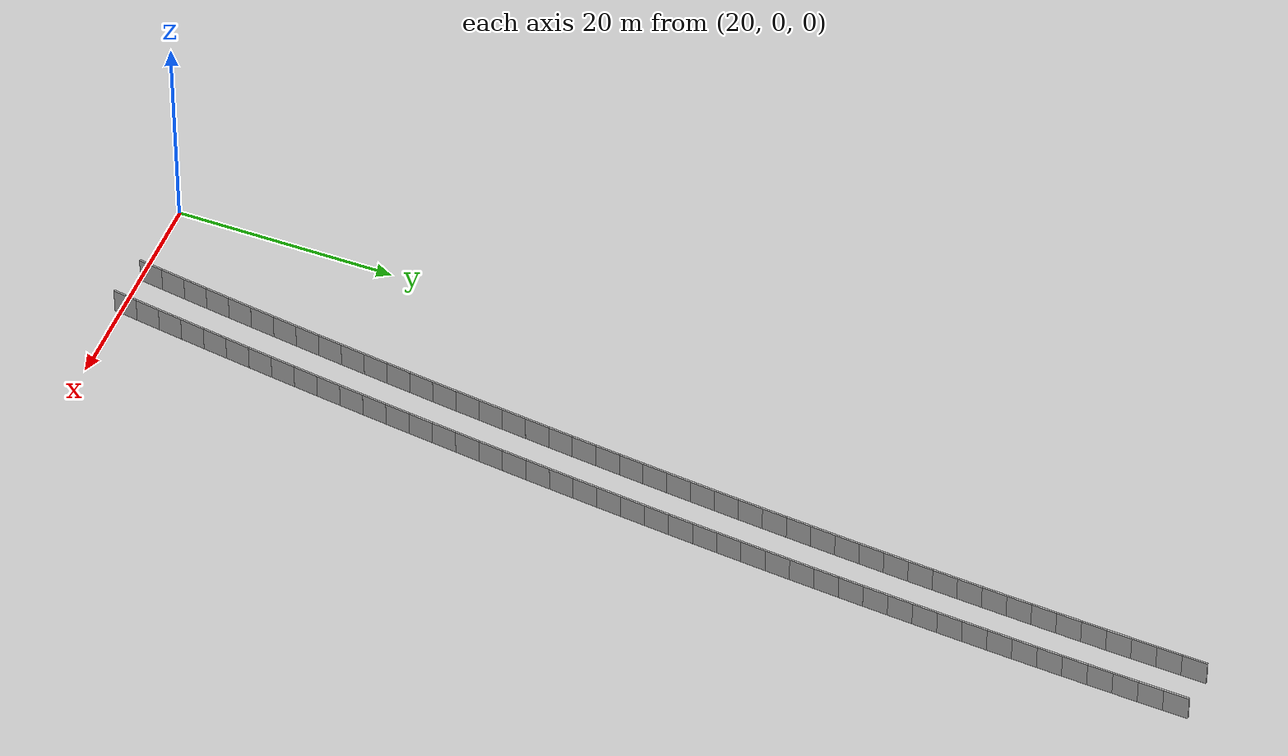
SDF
<?xml version="1.0" ?>
<sdf version="1.6">
  <model name="sps_2311">
    <pose frame="">0 0 0 0 -0 0</pose>
    <static>1</static>
    <self_collide>0</self_collide>
    <allow_auto_disable>0</allow_auto_disable>
    <link name="Wall4527">
      <kinematic>0</kinematic>
      <gravity>1</gravity>
      <self_collide>0</self_collide>
      <collision name="collision">
        <geometry>
          <box>
            <size>2.25472 0.15 2.5</size>
          </box>
        </geometry>
        <pose frame="">0 0 0 0 -0 0</pose>
      </collision>
      <visual name="visual">
        <geometry>
          <box>
            <size>2.25472 0.15 2.5</size>
          </box>
        </geometry>
        <pose frame="">0 0 0 0 -0 0</pose>
        <cast_shadows>1</cast_shadows>
        <transparency>0.0</transparency>
      </visual>
      <pose frame="">32.792 0.606795 1.25 0 -0 1.42792</pose>
    </link>
    <link name="Wall4528">
      <kinematic>0</kinematic>
      <gravity>1</gravity>
      <self_collide>0</self_collide>
      <collision name="collision">
        <geometry>
          <box>
            <size>2.25461 0.15 2.5</size>
          </box>
        </geometry>
        <pose frame="">0 0 0 0 -0 0</pose>
      </collision>
      <visual name="visual">
        <geometry>
          <box>
            <size>2.25461 0.15 2.5</size>
          </box>
        </geometry>
        <pose frame="">0 0 0 0 -0 0</pose>
        <cast_shadows>1</cast_shadows>
        <transparency>0.0</transparency>
      </visual>
      <pose frame="">33.1103 2.83888 1.25 0 -0 1.43038</pose>
    </link>
    <link name="Wall4529">
      <kinematic>0</kinematic>
      <gravity>1</gravity>
      <self_collide>0</self_collide>
      <collision name="collision">
        <geometry>
          <box>
            <size>2.25466 0.15 2.5</size>
          </box>
        </geometry>
        <pose frame="">0 0 0 0 -0 0</pose>
      </collision>
      <visual name="visual">
        <geometry>
          <box>
            <size>2.25466 0.15 2.5</size>
          </box>
        </geometry>
        <pose frame="">0 0 0 0 -0 0</pose>
        <cast_shadows>1</cast_shadows>
        <transparency>0.0</transparency>
      </visual>
      <pose frame="">33.4231 5.0717 1.25 0 -0 1.43276</pose>
    </link>
    <link name="Wall4530">
      <kinematic>0</kinematic>
      <gravity>1</gravity>
      <self_collide>0</self_collide>
      <collision name="collision">
        <geometry>
          <box>
            <size>2.25449 0.15 2.5</size>
          </box>
        </geometry>
        <pose frame="">0 0 0 0 -0 0</pose>
      </collision>
      <visual name="visual">
        <geometry>
          <box>
            <size>2.25449 0.15 2.5</size>
          </box>
        </geometry>
        <pose frame="">0 0 0 0 -0 0</pose>
        <cast_shadows>1</cast_shadows>
        <transparency>0.0</transparency>
      </visual>
      <pose frame="">33.7308 7.30519 1.25 0 -0 1.4351</pose>
    </link>
    <link name="Wall4531">
      <kinematic>0</kinematic>
      <gravity>1</gravity>
      <self_collide>0</self_collide>
      <collision name="collision">
        <geometry>
          <box>
            <size>2.25464 0.15 2.5</size>
          </box>
        </geometry>
        <pose frame="">0 0 0 0 -0 0</pose>
      </collision>
      <visual name="visual">
        <geometry>
          <box>
            <size>2.25464 0.15 2.5</size>
          </box>
        </geometry>
        <pose frame="">0 0 0 0 -0 0</pose>
        <cast_shadows>1</cast_shadows>
        <transparency>0.0</transparency>
      </visual>
      <pose frame="">34.0332 9.53938 1.25 0 -0 1.43743</pose>
    </link>
    <link name="Wall4532">
      <kinematic>0</kinematic>
      <gravity>1</gravity>
      <self_collide>0</self_collide>
      <collision name="collision">
        <geometry>
          <box>
            <size>2.25469 0.15 2.5</size>
          </box>
        </geometry>
        <pose frame="">0 0 0 0 -0 0</pose>
      </collision>
      <visual name="visual">
        <geometry>
          <box>
            <size>2.25469 0.15 2.5</size>
          </box>
        </geometry>
        <pose frame="">0 0 0 0 -0 0</pose>
        <cast_shadows>1</cast_shadows>
        <transparency>0.0</transparency>
      </visual>
      <pose frame="">34.3302 11.7744 1.25 0 -0 1.43994</pose>
    </link>
    <link name="Wall4533">
      <kinematic>0</kinematic>
      <gravity>1</gravity>
      <self_collide>0</self_collide>
      <collision name="collision">
        <geometry>
          <box>
            <size>2.25458 0.15 2.5</size>
          </box>
        </geometry>
        <pose frame="">0 0 0 0 -0 0</pose>
      </collision>
      <visual name="visual">
        <geometry>
          <box>
            <size>2.25458 0.15 2.5</size>
          </box>
        </geometry>
        <pose frame="">0 0 0 0 -0 0</pose>
        <cast_shadows>1</cast_shadows>
        <transparency>0.0</transparency>
      </visual>
      <pose frame="">34.6218 14.0101 1.25 0 -0 1.44218</pose>
    </link>
    <link name="Wall4534">
      <kinematic>0</kinematic>
      <gravity>1</gravity>
      <self_collide>0</self_collide>
      <collision name="collision">
        <geometry>
          <box>
            <size>2.25475 0.15 2.5</size>
          </box>
        </geometry>
        <pose frame="">0 0 0 0 -0 0</pose>
      </collision>
      <visual name="visual">
        <geometry>
          <box>
            <size>2.25475 0.15 2.5</size>
          </box>
        </geometry>
        <pose frame="">0 0 0 0 -0 0</pose>
        <cast_shadows>1</cast_shadows>
        <transparency>0.0</transparency>
      </visual>
      <pose frame="">34.9083 16.2465 1.25 0 -0 1.44459</pose>
    </link>
    <link name="Wall4535">
      <kinematic>0</kinematic>
      <gravity>1</gravity>
      <self_collide>0</self_collide>
      <collision name="collision">
        <geometry>
          <box>
            <size>2.25444 0.15 2.5</size>
          </box>
        </geometry>
        <pose frame="">0 0 0 0 -0 0</pose>
      </collision>
      <visual name="visual">
        <geometry>
          <box>
            <size>2.25444 0.15 2.5</size>
          </box>
        </geometry>
        <pose frame="">0 0 0 0 -0 0</pose>
        <cast_shadows>1</cast_shadows>
        <transparency>0.0</transparency>
      </visual>
      <pose frame="">35.1894 18.4835 1.25 0 -0 1.447</pose>
    </link>
    <link name="Wall4536">
      <kinematic>0</kinematic>
      <gravity>1</gravity>
      <self_collide>0</self_collide>
      <collision name="collision">
        <geometry>
          <box>
            <size>2.25463 0.15 2.5</size>
          </box>
        </geometry>
        <pose frame="">0 0 0 0 -0 0</pose>
      </collision>
      <visual name="visual">
        <geometry>
          <box>
            <size>2.25463 0.15 2.5</size>
          </box>
        </geometry>
        <pose frame="">0 0 0 0 -0 0</pose>
        <cast_shadows>1</cast_shadows>
        <transparency>0.0</transparency>
      </visual>
      <pose frame="">35.4651 20.7211 1.25 0 -0 1.44941</pose>
    </link>
    <link name="Wall4537">
      <kinematic>0</kinematic>
      <gravity>1</gravity>
      <self_collide>0</self_collide>
      <collision name="collision">
        <geometry>
          <box>
            <size>2.25473 0.15 2.5</size>
          </box>
        </geometry>
        <pose frame="">0 0 0 0 -0 0</pose>
      </collision>
      <visual name="visual">
        <geometry>
          <box>
            <size>2.25473 0.15 2.5</size>
          </box>
        </geometry>
        <pose frame="">0 0 0 0 -0 0</pose>
        <cast_shadows>1</cast_shadows>
        <transparency>0.0</transparency>
      </visual>
      <pose frame="">35.7356 22.9595 1.25 0 -0 1.45173</pose>
    </link>
    <link name="Wall4538">
      <kinematic>0</kinematic>
      <gravity>1</gravity>
      <self_collide>0</self_collide>
      <collision name="collision">
        <geometry>
          <box>
            <size>2.25454 0.15 2.5</size>
          </box>
        </geometry>
        <pose frame="">0 0 0 0 -0 0</pose>
      </collision>
      <visual name="visual">
        <geometry>
          <box>
            <size>2.25454 0.15 2.5</size>
          </box>
        </geometry>
        <pose frame="">0 0 0 0 -0 0</pose>
        <cast_shadows>1</cast_shadows>
        <transparency>0.0</transparency>
      </visual>
      <pose frame="">36.0008 25.1985 1.25 0 -0 1.45407</pose>
    </link>
    <link name="Wall4539">
      <kinematic>0</kinematic>
      <gravity>1</gravity>
      <self_collide>0</self_collide>
      <collision name="collision">
        <geometry>
          <box>
            <size>2.25453 0.15 2.5</size>
          </box>
        </geometry>
        <pose frame="">0 0 0 0 -0 0</pose>
      </collision>
      <visual name="visual">
        <geometry>
          <box>
            <size>2.25453 0.15 2.5</size>
          </box>
        </geometry>
        <pose frame="">0 0 0 0 -0 0</pose>
        <cast_shadows>1</cast_shadows>
        <transparency>0.0</transparency>
      </visual>
      <pose frame="">36.2606 27.438 1.25 0 -0 1.45646</pose>
    </link>
    <link name="Wall4540">
      <kinematic>0</kinematic>
      <gravity>1</gravity>
      <self_collide>0</self_collide>
      <collision name="collision">
        <geometry>
          <box>
            <size>2.25471 0.15 2.5</size>
          </box>
        </geometry>
        <pose frame="">0 0 0 0 -0 0</pose>
      </collision>
      <visual name="visual">
        <geometry>
          <box>
            <size>2.25471 0.15 2.5</size>
          </box>
        </geometry>
        <pose frame="">0 0 0 0 -0 0</pose>
        <cast_shadows>1</cast_shadows>
        <transparency>0.0</transparency>
      </visual>
      <pose frame="">36.5152 29.6782 1.25 0 -0 1.45887</pose>
    </link>
    <link name="Wall4541">
      <kinematic>0</kinematic>
      <gravity>1</gravity>
      <self_collide>0</self_collide>
      <collision name="collision">
        <geometry>
          <box>
            <size>2.25469 0.15 2.5</size>
          </box>
        </geometry>
        <pose frame="">0 0 0 0 -0 0</pose>
      </collision>
      <visual name="visual">
        <geometry>
          <box>
            <size>2.25469 0.15 2.5</size>
          </box>
        </geometry>
        <pose frame="">0 0 0 0 -0 0</pose>
        <cast_shadows>1</cast_shadows>
        <transparency>0.0</transparency>
      </visual>
      <pose frame="">36.7642 31.9191 1.25 0 -0 1.4614</pose>
    </link>
    <link name="Wall4542">
      <kinematic>0</kinematic>
      <gravity>1</gravity>
      <self_collide>0</self_collide>
      <collision name="collision">
        <geometry>
          <box>
            <size>2.25476 0.15 2.5</size>
          </box>
        </geometry>
        <pose frame="">0 0 0 0 -0 0</pose>
      </collision>
      <visual name="visual">
        <geometry>
          <box>
            <size>2.25476 0.15 2.5</size>
          </box>
        </geometry>
        <pose frame="">0 0 0 0 -0 0</pose>
        <cast_shadows>1</cast_shadows>
        <transparency>0.0</transparency>
      </visual>
      <pose frame="">37.0078 34.1606 1.25 0 -0 1.46361</pose>
    </link>
    <link name="Wall4543">
      <kinematic>0</kinematic>
      <gravity>1</gravity>
      <self_collide>0</self_collide>
      <collision name="collision">
        <geometry>
          <box>
            <size>2.25439 0.15 2.5</size>
          </box>
        </geometry>
        <pose frame="">0 0 0 0 -0 0</pose>
      </collision>
      <visual name="visual">
        <geometry>
          <box>
            <size>2.25439 0.15 2.5</size>
          </box>
        </geometry>
        <pose frame="">0 0 0 0 -0 0</pose>
        <cast_shadows>1</cast_shadows>
        <transparency>0.0</transparency>
      </visual>
      <pose frame="">37.2465 36.4025 1.25 0 -0 1.46591</pose>
    </link>
    <link name="Wall4544">
      <kinematic>0</kinematic>
      <gravity>1</gravity>
      <self_collide>0</self_collide>
      <collision name="collision">
        <geometry>
          <box>
            <size>2.25478 0.15 2.5</size>
          </box>
        </geometry>
        <pose frame="">0 0 0 0 -0 0</pose>
      </collision>
      <visual name="visual">
        <geometry>
          <box>
            <size>2.25478 0.15 2.5</size>
          </box>
        </geometry>
        <pose frame="">0 0 0 0 -0 0</pose>
        <cast_shadows>1</cast_shadows>
        <transparency>0.0</transparency>
      </visual>
      <pose frame="">37.4797 38.645 1.25 0 -0 1.46843</pose>
    </link>
    <link name="Wall4545">
      <kinematic>0</kinematic>
      <gravity>1</gravity>
      <self_collide>0</self_collide>
      <collision name="collision">
        <geometry>
          <box>
            <size>2.2545 0.15 2.5</size>
          </box>
        </geometry>
        <pose frame="">0 0 0 0 -0 0</pose>
      </collision>
      <visual name="visual">
        <geometry>
          <box>
            <size>2.2545 0.15 2.5</size>
          </box>
        </geometry>
        <pose frame="">0 0 0 0 -0 0</pose>
        <cast_shadows>1</cast_shadows>
        <transparency>0.0</transparency>
      </visual>
      <pose frame="">37.7075 40.8881 1.25 0 -0 1.47076</pose>
    </link>
    <link name="Wall4546">
      <kinematic>0</kinematic>
      <gravity>1</gravity>
      <self_collide>0</self_collide>
      <collision name="collision">
        <geometry>
          <box>
            <size>2.25454 0.15 2.5</size>
          </box>
        </geometry>
        <pose frame="">0 0 0 0 -0 0</pose>
      </collision>
      <visual name="visual">
        <geometry>
          <box>
            <size>2.25454 0.15 2.5</size>
          </box>
        </geometry>
        <pose frame="">0 0 0 0 -0 0</pose>
        <cast_shadows>1</cast_shadows>
        <transparency>0.0</transparency>
      </visual>
      <pose frame="">37.93 43.1316 1.25 0 -0 1.47305</pose>
    </link>
    <link name="Wall4547">
      <kinematic>0</kinematic>
      <gravity>1</gravity>
      <self_collide>0</self_collide>
      <collision name="collision">
        <geometry>
          <box>
            <size>2.25486 0.15 2.5</size>
          </box>
        </geometry>
        <pose frame="">0 0 0 0 -0 0</pose>
      </collision>
      <visual name="visual">
        <geometry>
          <box>
            <size>2.25486 0.15 2.5</size>
          </box>
        </geometry>
        <pose frame="">0 0 0 0 -0 0</pose>
        <cast_shadows>1</cast_shadows>
        <transparency>0.0</transparency>
      </visual>
      <pose frame="">38.1474 45.3758 1.25 0 -0 1.47548</pose>
    </link>
    <link name="Wall4548">
      <kinematic>0</kinematic>
      <gravity>1</gravity>
      <self_collide>0</self_collide>
      <collision name="collision">
        <geometry>
          <box>
            <size>2.25446 0.15 2.5</size>
          </box>
        </geometry>
        <pose frame="">0 0 0 0 -0 0</pose>
      </collision>
      <visual name="visual">
        <geometry>
          <box>
            <size>2.25446 0.15 2.5</size>
          </box>
        </geometry>
        <pose frame="">0 0 0 0 -0 0</pose>
        <cast_shadows>1</cast_shadows>
        <transparency>0.0</transparency>
      </visual>
      <pose frame="">38.3592 47.6205 1.25 0 -0 1.47796</pose>
    </link>
    <link name="Wall4549">
      <kinematic>0</kinematic>
      <gravity>1</gravity>
      <self_collide>0</self_collide>
      <collision name="collision">
        <geometry>
          <box>
            <size>2.25465 0.15 2.5</size>
          </box>
        </geometry>
        <pose frame="">0 0 0 0 -0 0</pose>
      </collision>
      <visual name="visual">
        <geometry>
          <box>
            <size>2.25465 0.15 2.5</size>
          </box>
        </geometry>
        <pose frame="">0 0 0 0 -0 0</pose>
        <cast_shadows>1</cast_shadows>
        <transparency>0.0</transparency>
      </visual>
      <pose frame="">38.5655 49.8656 1.25 0 -0 1.48028</pose>
    </link>
    <link name="Wall4550">
      <kinematic>0</kinematic>
      <gravity>1</gravity>
      <self_collide>0</self_collide>
      <collision name="collision">
        <geometry>
          <box>
            <size>2.25455 0.15 2.5</size>
          </box>
        </geometry>
        <pose frame="">0 0 0 0 -0 0</pose>
      </collision>
      <visual name="visual">
        <geometry>
          <box>
            <size>2.25455 0.15 2.5</size>
          </box>
        </geometry>
        <pose frame="">0 0 0 0 -0 0</pose>
        <cast_shadows>1</cast_shadows>
        <transparency>0.0</transparency>
      </visual>
      <pose frame="">38.7667 52.1112 1.25 0 -0 1.48259</pose>
    </link>
    <link name="Wall4551">
      <kinematic>0</kinematic>
      <gravity>1</gravity>
      <self_collide>0</self_collide>
      <collision name="collision">
        <geometry>
          <box>
            <size>2.25467 0.15 2.5</size>
          </box>
        </geometry>
        <pose frame="">0 0 0 0 -0 0</pose>
      </collision>
      <visual name="visual">
        <geometry>
          <box>
            <size>2.25467 0.15 2.5</size>
          </box>
        </geometry>
        <pose frame="">0 0 0 0 -0 0</pose>
        <cast_shadows>1</cast_shadows>
        <transparency>0.0</transparency>
      </visual>
      <pose frame="">38.9625 54.3573 1.25 0 -0 1.48509</pose>
    </link>
    <link name="Wall4552">
      <kinematic>0</kinematic>
      <gravity>1</gravity>
      <self_collide>0</self_collide>
      <collision name="collision">
        <geometry>
          <box>
            <size>2.25466 0.15 2.5</size>
          </box>
        </geometry>
        <pose frame="">0 0 0 0 -0 0</pose>
      </collision>
      <visual name="visual">
        <geometry>
          <box>
            <size>2.25466 0.15 2.5</size>
          </box>
        </geometry>
        <pose frame="">0 0 0 0 -0 0</pose>
        <cast_shadows>1</cast_shadows>
        <transparency>0.0</transparency>
      </visual>
      <pose frame="">39.1529 56.6039 1.25 0 -0 1.4874</pose>
    </link>
    <link name="Wall4553">
      <kinematic>0</kinematic>
      <gravity>1</gravity>
      <self_collide>0</self_collide>
      <collision name="collision">
        <geometry>
          <box>
            <size>2.2546 0.15 2.5</size>
          </box>
        </geometry>
        <pose frame="">0 0 0 0 -0 0</pose>
      </collision>
      <visual name="visual">
        <geometry>
          <box>
            <size>2.2546 0.15 2.5</size>
          </box>
        </geometry>
        <pose frame="">0 0 0 0 -0 0</pose>
        <cast_shadows>1</cast_shadows>
        <transparency>0.0</transparency>
      </visual>
      <pose frame="">39.3382 58.8509 1.25 0 -0 1.48971</pose>
    </link>
    <link name="Wall4554">
      <kinematic>0</kinematic>
      <gravity>1</gravity>
      <self_collide>0</self_collide>
      <collision name="collision">
        <geometry>
          <box>
            <size>2.25459 0.15 2.5</size>
          </box>
        </geometry>
        <pose frame="">0 0 0 0 -0 0</pose>
      </collision>
      <visual name="visual">
        <geometry>
          <box>
            <size>2.25459 0.15 2.5</size>
          </box>
        </geometry>
        <pose frame="">0 0 0 0 -0 0</pose>
        <cast_shadows>1</cast_shadows>
        <transparency>0.0</transparency>
      </visual>
      <pose frame="">39.5181 61.0983 1.25 0 -0 1.49213</pose>
    </link>
    <link name="Wall4555">
      <kinematic>0</kinematic>
      <gravity>1</gravity>
      <self_collide>0</self_collide>
      <collision name="collision">
        <geometry>
          <box>
            <size>2.25471 0.15 2.5</size>
          </box>
        </geometry>
        <pose frame="">0 0 0 0 -0 0</pose>
      </collision>
      <visual name="visual">
        <geometry>
          <box>
            <size>2.25471 0.15 2.5</size>
          </box>
        </geometry>
        <pose frame="">0 0 0 0 -0 0</pose>
        <cast_shadows>1</cast_shadows>
        <transparency>0.0</transparency>
      </visual>
      <pose frame="">39.6925 63.3462 1.25 0 -0 1.4946</pose>
    </link>
    <link name="Wall4556">
      <kinematic>0</kinematic>
      <gravity>1</gravity>
      <self_collide>0</self_collide>
      <collision name="collision">
        <geometry>
          <box>
            <size>2.25457 0.15 2.5</size>
          </box>
        </geometry>
        <pose frame="">0 0 0 0 -0 0</pose>
      </collision>
      <visual name="visual">
        <geometry>
          <box>
            <size>2.25457 0.15 2.5</size>
          </box>
        </geometry>
        <pose frame="">0 0 0 0 -0 0</pose>
        <cast_shadows>1</cast_shadows>
        <transparency>0.0</transparency>
      </visual>
      <pose frame="">39.8616 65.5945 1.25 0 -0 1.49685</pose>
    </link>
    <link name="Wall4557">
      <kinematic>0</kinematic>
      <gravity>1</gravity>
      <self_collide>0</self_collide>
      <collision name="collision">
        <geometry>
          <box>
            <size>2.25473 0.15 2.5</size>
          </box>
        </geometry>
        <pose frame="">0 0 0 0 -0 0</pose>
      </collision>
      <visual name="visual">
        <geometry>
          <box>
            <size>2.25473 0.15 2.5</size>
          </box>
        </geometry>
        <pose frame="">0 0 0 0 -0 0</pose>
        <cast_shadows>1</cast_shadows>
        <transparency>0.0</transparency>
      </visual>
      <pose frame="">40.0254 67.8432 1.25 0 -0 1.49924</pose>
    </link>
    <link name="Wall4558">
      <kinematic>0</kinematic>
      <gravity>1</gravity>
      <self_collide>0</self_collide>
      <collision name="collision">
        <geometry>
          <box>
            <size>2.25442 0.15 2.5</size>
          </box>
        </geometry>
        <pose frame="">0 0 0 0 -0 0</pose>
      </collision>
      <visual name="visual">
        <geometry>
          <box>
            <size>2.25442 0.15 2.5</size>
          </box>
        </geometry>
        <pose frame="">0 0 0 0 -0 0</pose>
        <cast_shadows>1</cast_shadows>
        <transparency>0.0</transparency>
      </visual>
      <pose frame="">40.184 70.0922 1.25 0 -0 1.50162</pose>
    </link>
    <link name="Wall4559">
      <kinematic>0</kinematic>
      <gravity>1</gravity>
      <self_collide>0</self_collide>
      <collision name="collision">
        <geometry>
          <box>
            <size>2.25466 0.15 2.5</size>
          </box>
        </geometry>
        <pose frame="">0 0 0 0 -0 0</pose>
      </collision>
      <visual name="visual">
        <geometry>
          <box>
            <size>2.25466 0.15 2.5</size>
          </box>
        </geometry>
        <pose frame="">0 0 0 0 -0 0</pose>
        <cast_shadows>1</cast_shadows>
        <transparency>0.0</transparency>
      </visual>
      <pose frame="">40.3371 72.3415 1.25 0 -0 1.50404</pose>
    </link>
    <link name="Wall4560">
      <kinematic>0</kinematic>
      <gravity>1</gravity>
      <self_collide>0</self_collide>
      <collision name="collision">
        <geometry>
          <box>
            <size>2.25465 0.15 2.5</size>
          </box>
        </geometry>
        <pose frame="">0 0 0 0 -0 0</pose>
      </collision>
      <visual name="visual">
        <geometry>
          <box>
            <size>2.25465 0.15 2.5</size>
          </box>
        </geometry>
        <pose frame="">0 0 0 0 -0 0</pose>
        <cast_shadows>1</cast_shadows>
        <transparency>0.0</transparency>
      </visual>
      <pose frame="">40.4846 74.5913 1.25 0 -0 1.50654</pose>
    </link>
    <link name="Wall4561">
      <kinematic>0</kinematic>
      <gravity>1</gravity>
      <self_collide>0</self_collide>
      <collision name="collision">
        <geometry>
          <box>
            <size>2.25471 0.15 2.5</size>
          </box>
        </geometry>
        <pose frame="">0 0 0 0 -0 0</pose>
      </collision>
      <visual name="visual">
        <geometry>
          <box>
            <size>2.25471 0.15 2.5</size>
          </box>
        </geometry>
        <pose frame="">0 0 0 0 -0 0</pose>
        <cast_shadows>1</cast_shadows>
        <transparency>0.0</transparency>
      </visual>
      <pose frame="">40.6269 76.8415 1.25 0 -0 1.50874</pose>
    </link>
    <link name="Wall4562">
      <kinematic>0</kinematic>
      <gravity>1</gravity>
      <self_collide>0</self_collide>
      <collision name="collision">
        <geometry>
          <box>
            <size>2.25463 0.15 2.5</size>
          </box>
        </geometry>
        <pose frame="">0 0 0 0 -0 0</pose>
      </collision>
      <visual name="visual">
        <geometry>
          <box>
            <size>2.25463 0.15 2.5</size>
          </box>
        </geometry>
        <pose frame="">0 0 0 0 -0 0</pose>
        <cast_shadows>1</cast_shadows>
        <transparency>0.0</transparency>
      </visual>
      <pose frame="">40.7642 79.092 1.25 0 -0 1.51107</pose>
    </link>
    <link name="Wall4563">
      <kinematic>0</kinematic>
      <gravity>1</gravity>
      <self_collide>0</self_collide>
      <collision name="collision">
        <geometry>
          <box>
            <size>2.25447 0.15 2.5</size>
          </box>
        </geometry>
        <pose frame="">0 0 0 0 -0 0</pose>
      </collision>
      <visual name="visual">
        <geometry>
          <box>
            <size>2.25447 0.15 2.5</size>
          </box>
        </geometry>
        <pose frame="">0 0 0 0 -0 0</pose>
        <cast_shadows>1</cast_shadows>
        <transparency>0.0</transparency>
      </visual>
      <pose frame="">40.8958 81.3427 1.25 0 -0 1.51364</pose>
    </link>
    <link name="Wall4564">
      <kinematic>0</kinematic>
      <gravity>1</gravity>
      <self_collide>0</self_collide>
      <collision name="collision">
        <geometry>
          <box>
            <size>2.25462 0.15 2.5</size>
          </box>
        </geometry>
        <pose frame="">0 0 0 0 -0 0</pose>
      </collision>
      <visual name="visual">
        <geometry>
          <box>
            <size>2.25462 0.15 2.5</size>
          </box>
        </geometry>
        <pose frame="">0 0 0 0 -0 0</pose>
        <cast_shadows>1</cast_shadows>
        <transparency>0.0</transparency>
      </visual>
      <pose frame="">41.0221 83.5937 1.25 0 -0 1.51584</pose>
    </link>
    <link name="Wall4565">
      <kinematic>0</kinematic>
      <gravity>1</gravity>
      <self_collide>0</self_collide>
      <collision name="collision">
        <geometry>
          <box>
            <size>2.25452 0.15 2.5</size>
          </box>
        </geometry>
        <pose frame="">0 0 0 0 -0 0</pose>
      </collision>
      <visual name="visual">
        <geometry>
          <box>
            <size>2.25452 0.15 2.5</size>
          </box>
        </geometry>
        <pose frame="">0 0 0 0 -0 0</pose>
        <cast_shadows>1</cast_shadows>
        <transparency>0.0</transparency>
      </visual>
      <pose frame="">41.1433 85.845 1.25 0 -0 1.51825</pose>
    </link>
    <link name="Wall4566">
      <kinematic>0</kinematic>
      <gravity>1</gravity>
      <self_collide>0</self_collide>
      <collision name="collision">
        <geometry>
          <box>
            <size>2.25459 0.15 2.5</size>
          </box>
        </geometry>
        <pose frame="">0 0 0 0 -0 0</pose>
      </collision>
      <visual name="visual">
        <geometry>
          <box>
            <size>2.25459 0.15 2.5</size>
          </box>
        </geometry>
        <pose frame="">0 0 0 0 -0 0</pose>
        <cast_shadows>1</cast_shadows>
        <transparency>0.0</transparency>
      </visual>
      <pose frame="">41.2589 88.0966 1.25 0 -0 1.52075</pose>
    </link>
    <link name="Wall4567">
      <kinematic>0</kinematic>
      <gravity>1</gravity>
      <self_collide>0</self_collide>
      <collision name="collision">
        <geometry>
          <box>
            <size>2.25477 0.15 2.5</size>
          </box>
        </geometry>
        <pose frame="">0 0 0 0 -0 0</pose>
      </collision>
      <visual name="visual">
        <geometry>
          <box>
            <size>2.25477 0.15 2.5</size>
          </box>
        </geometry>
        <pose frame="">0 0 0 0 -0 0</pose>
        <cast_shadows>1</cast_shadows>
        <transparency>0.0</transparency>
      </visual>
      <pose frame="">41.3691 90.3486 1.25 0 -0 1.52305</pose>
    </link>
    <link name="Wall4568">
      <kinematic>0</kinematic>
      <gravity>1</gravity>
      <self_collide>0</self_collide>
      <collision name="collision">
        <geometry>
          <box>
            <size>2.2547 0.15 2.5</size>
          </box>
        </geometry>
        <pose frame="">0 0 0 0 -0 0</pose>
      </collision>
      <visual name="visual">
        <geometry>
          <box>
            <size>2.2547 0.15 2.5</size>
          </box>
        </geometry>
        <pose frame="">0 0 0 0 -0 0</pose>
        <cast_shadows>1</cast_shadows>
        <transparency>0.0</transparency>
      </visual>
      <pose frame="">41.4741 92.6009 1.25 0 -0 1.52538</pose>
    </link>
    <link name="Wall4569">
      <kinematic>0</kinematic>
      <gravity>1</gravity>
      <self_collide>0</self_collide>
      <collision name="collision">
        <geometry>
          <box>
            <size>2.25453 0.15 2.5</size>
          </box>
        </geometry>
        <pose frame="">0 0 0 0 -0 0</pose>
      </collision>
      <visual name="visual">
        <geometry>
          <box>
            <size>2.25453 0.15 2.5</size>
          </box>
        </geometry>
        <pose frame="">0 0 0 0 -0 0</pose>
        <cast_shadows>1</cast_shadows>
        <transparency>0.0</transparency>
      </visual>
      <pose frame="">41.5738 94.8533 1.25 0 -0 1.52774</pose>
    </link>
    <link name="Wall4570">
      <kinematic>0</kinematic>
      <gravity>1</gravity>
      <self_collide>0</self_collide>
      <collision name="collision">
        <geometry>
          <box>
            <size>2.25466 0.15 2.5</size>
          </box>
        </geometry>
        <pose frame="">0 0 0 0 -0 0</pose>
      </collision>
      <visual name="visual">
        <geometry>
          <box>
            <size>2.25466 0.15 2.5</size>
          </box>
        </geometry>
        <pose frame="">0 0 0 0 -0 0</pose>
        <cast_shadows>1</cast_shadows>
        <transparency>0.0</transparency>
      </visual>
      <pose frame="">41.668 97.1059 1.25 0 -0 1.53026</pose>
    </link>
    <link name="Wall4571">
      <kinematic>0</kinematic>
      <gravity>1</gravity>
      <self_collide>0</self_collide>
      <collision name="collision">
        <geometry>
          <box>
            <size>2.25446 0.15 2.5</size>
          </box>
        </geometry>
        <pose frame="">0 0 0 0 -0 0</pose>
      </collision>
      <visual name="visual">
        <geometry>
          <box>
            <size>2.25446 0.15 2.5</size>
          </box>
        </geometry>
        <pose frame="">0 0 0 0 -0 0</pose>
        <cast_shadows>1</cast_shadows>
        <transparency>0.0</transparency>
      </visual>
      <pose frame="">41.7569 99.3587 1.25 0 -0 1.53245</pose>
    </link>
    <link name="Wall6252">
      <kinematic>0</kinematic>
      <gravity>1</gravity>
      <self_collide>0</self_collide>
      <collision name="collision">
        <geometry>
          <box>
            <size>2.24482 0.15 2.5</size>
          </box>
        </geometry>
        <pose frame="">0 0 0 0 -0 0</pose>
      </collision>
      <visual name="visual">
        <geometry>
          <box>
            <size>2.24482 0.15 2.5</size>
          </box>
        </geometry>
        <pose frame="">0 0 0 0 -0 0</pose>
        <cast_shadows>1</cast_shadows>
        <transparency>0.0</transparency>
      </visual>
      <pose frame="">28.6948 1.19591 1.25 0 -0 1.42803</pose>
    </link>
    <link name="Wall6253">
      <kinematic>0</kinematic>
      <gravity>1</gravity>
      <self_collide>0</self_collide>
      <collision name="collision">
        <geometry>
          <box>
            <size>2.2449 0.15 2.5</size>
          </box>
        </geometry>
        <pose frame="">0 0 0 0 -0 0</pose>
      </collision>
      <visual name="visual">
        <geometry>
          <box>
            <size>2.2449 0.15 2.5</size>
          </box>
        </geometry>
        <pose frame="">0 0 0 0 -0 0</pose>
        <cast_shadows>1</cast_shadows>
        <transparency>0.0</transparency>
      </visual>
      <pose frame="">29.0116 3.41829 1.25 0 -0 1.43029</pose>
    </link>
    <link name="Wall6254">
      <kinematic>0</kinematic>
      <gravity>1</gravity>
      <self_collide>0</self_collide>
      <collision name="collision">
        <geometry>
          <box>
            <size>2.24474 0.15 2.5</size>
          </box>
        </geometry>
        <pose frame="">0 0 0 0 -0 0</pose>
      </collision>
      <visual name="visual">
        <geometry>
          <box>
            <size>2.24474 0.15 2.5</size>
          </box>
        </geometry>
        <pose frame="">0 0 0 0 -0 0</pose>
        <cast_shadows>1</cast_shadows>
        <transparency>0.0</transparency>
      </visual>
      <pose frame="">29.3233 5.64137 1.25 0 -0 1.43278</pose>
    </link>
    <link name="Wall6255">
      <kinematic>0</kinematic>
      <gravity>1</gravity>
      <self_collide>0</self_collide>
      <collision name="collision">
        <geometry>
          <box>
            <size>2.24465 0.15 2.5</size>
          </box>
        </geometry>
        <pose frame="">0 0 0 0 -0 0</pose>
      </collision>
      <visual name="visual">
        <geometry>
          <box>
            <size>2.24465 0.15 2.5</size>
          </box>
        </geometry>
        <pose frame="">0 0 0 0 -0 0</pose>
        <cast_shadows>1</cast_shadows>
        <transparency>0.0</transparency>
      </visual>
      <pose frame="">29.6296 7.86507 1.25 0 -0 1.43505</pose>
    </link>
    <link name="Wall6256">
      <kinematic>0</kinematic>
      <gravity>1</gravity>
      <self_collide>0</self_collide>
      <collision name="collision">
        <geometry>
          <box>
            <size>2.24496 0.15 2.5</size>
          </box>
        </geometry>
        <pose frame="">0 0 0 0 -0 0</pose>
      </collision>
      <visual name="visual">
        <geometry>
          <box>
            <size>2.24496 0.15 2.5</size>
          </box>
        </geometry>
        <pose frame="">0 0 0 0 -0 0</pose>
        <cast_shadows>1</cast_shadows>
        <transparency>0.0</transparency>
      </visual>
      <pose frame="">29.9307 10.0896 1.25 0 -0 1.43748</pose>
    </link>
    <link name="Wall6257">
      <kinematic>0</kinematic>
      <gravity>1</gravity>
      <self_collide>0</self_collide>
      <collision name="collision">
        <geometry>
          <box>
            <size>2.24479 0.15 2.5</size>
          </box>
        </geometry>
        <pose frame="">0 0 0 0 -0 0</pose>
      </collision>
      <visual name="visual">
        <geometry>
          <box>
            <size>2.24479 0.15 2.5</size>
          </box>
        </geometry>
        <pose frame="">0 0 0 0 -0 0</pose>
        <cast_shadows>1</cast_shadows>
        <transparency>0.0</transparency>
      </visual>
      <pose frame="">30.2264 12.3149 1.25 0 -0 1.43989</pose>
    </link>
    <link name="Wall6258">
      <kinematic>0</kinematic>
      <gravity>1</gravity>
      <self_collide>0</self_collide>
      <collision name="collision">
        <geometry>
          <box>
            <size>2.2447 0.15 2.5</size>
          </box>
        </geometry>
        <pose frame="">0 0 0 0 -0 0</pose>
      </collision>
      <visual name="visual">
        <geometry>
          <box>
            <size>2.2447 0.15 2.5</size>
          </box>
        </geometry>
        <pose frame="">0 0 0 0 -0 0</pose>
        <cast_shadows>1</cast_shadows>
        <transparency>0.0</transparency>
      </visual>
      <pose frame="">30.5167 14.5408 1.25 0 -0 1.44232</pose>
    </link>
    <link name="Wall6259">
      <kinematic>0</kinematic>
      <gravity>1</gravity>
      <self_collide>0</self_collide>
      <collision name="collision">
        <geometry>
          <box>
            <size>2.24487 0.15 2.5</size>
          </box>
        </geometry>
        <pose frame="">0 0 0 0 -0 0</pose>
      </collision>
      <visual name="visual">
        <geometry>
          <box>
            <size>2.24487 0.15 2.5</size>
          </box>
        </geometry>
        <pose frame="">0 0 0 0 -0 0</pose>
        <cast_shadows>1</cast_shadows>
        <transparency>0.0</transparency>
      </visual>
      <pose frame="">30.8019 16.7674 1.25 0 -0 1.4445</pose>
    </link>
    <link name="Wall6260">
      <kinematic>0</kinematic>
      <gravity>1</gravity>
      <self_collide>0</self_collide>
      <collision name="collision">
        <geometry>
          <box>
            <size>2.24475 0.15 2.5</size>
          </box>
        </geometry>
        <pose frame="">0 0 0 0 -0 0</pose>
      </collision>
      <visual name="visual">
        <geometry>
          <box>
            <size>2.24475 0.15 2.5</size>
          </box>
        </geometry>
        <pose frame="">0 0 0 0 -0 0</pose>
        <cast_shadows>1</cast_shadows>
        <transparency>0.0</transparency>
      </visual>
      <pose frame="">31.0817 18.9947 1.25 0 -0 1.44709</pose>
    </link>
    <link name="Wall6261">
      <kinematic>0</kinematic>
      <gravity>1</gravity>
      <self_collide>0</self_collide>
      <collision name="collision">
        <geometry>
          <box>
            <size>2.24457 0.15 2.5</size>
          </box>
        </geometry>
        <pose frame="">0 0 0 0 -0 0</pose>
      </collision>
      <visual name="visual">
        <geometry>
          <box>
            <size>2.24457 0.15 2.5</size>
          </box>
        </geometry>
        <pose frame="">0 0 0 0 -0 0</pose>
        <cast_shadows>1</cast_shadows>
        <transparency>0.0</transparency>
      </visual>
      <pose frame="">31.3563 21.2225 1.25 0 -0 1.4493</pose>
    </link>
    <link name="Wall6262">
      <kinematic>0</kinematic>
      <gravity>1</gravity>
      <self_collide>0</self_collide>
      <collision name="collision">
        <geometry>
          <box>
            <size>2.24509 0.15 2.5</size>
          </box>
        </geometry>
        <pose frame="">0 0 0 0 -0 0</pose>
      </collision>
      <visual name="visual">
        <geometry>
          <box>
            <size>2.24509 0.15 2.5</size>
          </box>
        </geometry>
        <pose frame="">0 0 0 0 -0 0</pose>
        <cast_shadows>1</cast_shadows>
        <transparency>0.0</transparency>
      </visual>
      <pose frame="">31.6257 23.4511 1.25 0 -0 1.45168</pose>
    </link>
    <link name="Wall6263">
      <kinematic>0</kinematic>
      <gravity>1</gravity>
      <self_collide>0</self_collide>
      <collision name="collision">
        <geometry>
          <box>
            <size>2.24466 0.15 2.5</size>
          </box>
        </geometry>
        <pose frame="">0 0 0 0 -0 0</pose>
      </collision>
      <visual name="visual">
        <geometry>
          <box>
            <size>2.24466 0.15 2.5</size>
          </box>
        </geometry>
        <pose frame="">0 0 0 0 -0 0</pose>
        <cast_shadows>1</cast_shadows>
        <transparency>0.0</transparency>
      </visual>
      <pose frame="">31.8895 25.6804 1.25 0 -0 1.45426</pose>
    </link>
    <link name="Wall6264">
      <kinematic>0</kinematic>
      <gravity>1</gravity>
      <self_collide>0</self_collide>
      <collision name="collision">
        <geometry>
          <box>
            <size>2.24481 0.15 2.5</size>
          </box>
        </geometry>
        <pose frame="">0 0 0 0 -0 0</pose>
      </collision>
      <visual name="visual">
        <geometry>
          <box>
            <size>2.24481 0.15 2.5</size>
          </box>
        </geometry>
        <pose frame="">0 0 0 0 -0 0</pose>
        <cast_shadows>1</cast_shadows>
        <transparency>0.0</transparency>
      </visual>
      <pose frame="">32.1481 27.9102 1.25 0 -0 1.45649</pose>
    </link>
    <link name="Wall6265">
      <kinematic>0</kinematic>
      <gravity>1</gravity>
      <self_collide>0</self_collide>
      <collision name="collision">
        <geometry>
          <box>
            <size>2.24465 0.15 2.5</size>
          </box>
        </geometry>
        <pose frame="">0 0 0 0 -0 0</pose>
      </collision>
      <visual name="visual">
        <geometry>
          <box>
            <size>2.24465 0.15 2.5</size>
          </box>
        </geometry>
        <pose frame="">0 0 0 0 -0 0</pose>
        <cast_shadows>1</cast_shadows>
        <transparency>0.0</transparency>
      </visual>
      <pose frame="">32.4015 30.1406 1.25 0 -0 1.45883</pose>
    </link>
    <link name="Wall6266">
      <kinematic>0</kinematic>
      <gravity>1</gravity>
      <self_collide>0</self_collide>
      <collision name="collision">
        <geometry>
          <box>
            <size>2.24489 0.15 2.5</size>
          </box>
        </geometry>
        <pose frame="">0 0 0 0 -0 0</pose>
      </collision>
      <visual name="visual">
        <geometry>
          <box>
            <size>2.24489 0.15 2.5</size>
          </box>
        </geometry>
        <pose frame="">0 0 0 0 -0 0</pose>
        <cast_shadows>1</cast_shadows>
        <transparency>0.0</transparency>
      </visual>
      <pose frame="">32.6496 32.3716 1.25 0 -0 1.46128</pose>
    </link>
    <link name="Wall6267">
      <kinematic>0</kinematic>
      <gravity>1</gravity>
      <self_collide>0</self_collide>
      <collision name="collision">
        <geometry>
          <box>
            <size>2.24464 0.15 2.5</size>
          </box>
        </geometry>
        <pose frame="">0 0 0 0 -0 0</pose>
      </collision>
      <visual name="visual">
        <geometry>
          <box>
            <size>2.24464 0.15 2.5</size>
          </box>
        </geometry>
        <pose frame="">0 0 0 0 -0 0</pose>
        <cast_shadows>1</cast_shadows>
        <transparency>0.0</transparency>
      </visual>
      <pose frame="">32.8924 34.6032 1.25 0 -0 1.46357</pose>
    </link>
    <link name="Wall6268">
      <kinematic>0</kinematic>
      <gravity>1</gravity>
      <self_collide>0</self_collide>
      <collision name="collision">
        <geometry>
          <box>
            <size>2.24492 0.15 2.5</size>
          </box>
        </geometry>
        <pose frame="">0 0 0 0 -0 0</pose>
      </collision>
      <visual name="visual">
        <geometry>
          <box>
            <size>2.24492 0.15 2.5</size>
          </box>
        </geometry>
        <pose frame="">0 0 0 0 -0 0</pose>
        <cast_shadows>1</cast_shadows>
        <transparency>0.0</transparency>
      </visual>
      <pose frame="">33.1299 36.8354 1.25 0 -0 1.46601</pose>
    </link>
    <link name="Wall6269">
      <kinematic>0</kinematic>
      <gravity>1</gravity>
      <self_collide>0</self_collide>
      <collision name="collision">
        <geometry>
          <box>
            <size>2.2448 0.15 2.5</size>
          </box>
        </geometry>
        <pose frame="">0 0 0 0 -0 0</pose>
      </collision>
      <visual name="visual">
        <geometry>
          <box>
            <size>2.2448 0.15 2.5</size>
          </box>
        </geometry>
        <pose frame="">0 0 0 0 -0 0</pose>
        <cast_shadows>1</cast_shadows>
        <transparency>0.0</transparency>
      </visual>
      <pose frame="">33.3621 39.0682 1.25 0 -0 1.46836</pose>
    </link>
    <link name="Wall6270">
      <kinematic>0</kinematic>
      <gravity>1</gravity>
      <self_collide>0</self_collide>
      <collision name="collision">
        <geometry>
          <box>
            <size>2.24481 0.15 2.5</size>
          </box>
        </geometry>
        <pose frame="">0 0 0 0 -0 0</pose>
      </collision>
      <visual name="visual">
        <geometry>
          <box>
            <size>2.24481 0.15 2.5</size>
          </box>
        </geometry>
        <pose frame="">0 0 0 0 -0 0</pose>
        <cast_shadows>1</cast_shadows>
        <transparency>0.0</transparency>
      </visual>
      <pose frame="">33.589 41.3015 1.25 0 -0 1.47074</pose>
    </link>
    <link name="Wall6271">
      <kinematic>0</kinematic>
      <gravity>1</gravity>
      <self_collide>0</self_collide>
      <collision name="collision">
        <geometry>
          <box>
            <size>2.2447 0.15 2.5</size>
          </box>
        </geometry>
        <pose frame="">0 0 0 0 -0 0</pose>
      </collision>
      <visual name="visual">
        <geometry>
          <box>
            <size>2.2447 0.15 2.5</size>
          </box>
        </geometry>
        <pose frame="">0 0 0 0 -0 0</pose>
        <cast_shadows>1</cast_shadows>
        <transparency>0.0</transparency>
      </visual>
      <pose frame="">33.8105 43.5353 1.25 0 -0 1.47316</pose>
    </link>
    <link name="Wall6272">
      <kinematic>0</kinematic>
      <gravity>1</gravity>
      <self_collide>0</self_collide>
      <collision name="collision">
        <geometry>
          <box>
            <size>2.24482 0.15 2.5</size>
          </box>
        </geometry>
        <pose frame="">0 0 0 0 -0 0</pose>
      </collision>
      <visual name="visual">
        <geometry>
          <box>
            <size>2.24482 0.15 2.5</size>
          </box>
        </geometry>
        <pose frame="">0 0 0 0 -0 0</pose>
        <cast_shadows>1</cast_shadows>
        <transparency>0.0</transparency>
      </visual>
      <pose frame="">34.0268 45.7696 1.25 0 -0 1.47543</pose>
    </link>
    <link name="Wall6273">
      <kinematic>0</kinematic>
      <gravity>1</gravity>
      <self_collide>0</self_collide>
      <collision name="collision">
        <geometry>
          <box>
            <size>2.24483 0.15 2.5</size>
          </box>
        </geometry>
        <pose frame="">0 0 0 0 -0 0</pose>
      </collision>
      <visual name="visual">
        <geometry>
          <box>
            <size>2.24483 0.15 2.5</size>
          </box>
        </geometry>
        <pose frame="">0 0 0 0 -0 0</pose>
        <cast_shadows>1</cast_shadows>
        <transparency>0.0</transparency>
      </visual>
      <pose frame="">34.2376 48.0045 1.25 0 -0 1.478</pose>
    </link>
    <link name="Wall6274">
      <kinematic>0</kinematic>
      <gravity>1</gravity>
      <self_collide>0</self_collide>
      <collision name="collision">
        <geometry>
          <box>
            <size>2.24479 0.15 2.5</size>
          </box>
        </geometry>
        <pose frame="">0 0 0 0 -0 0</pose>
      </collision>
      <visual name="visual">
        <geometry>
          <box>
            <size>2.24479 0.15 2.5</size>
          </box>
        </geometry>
        <pose frame="">0 0 0 0 -0 0</pose>
        <cast_shadows>1</cast_shadows>
        <transparency>0.0</transparency>
      </visual>
      <pose frame="">34.4431 50.2399 1.25 0 -0 1.48024</pose>
    </link>
    <link name="Wall6275">
      <kinematic>0</kinematic>
      <gravity>1</gravity>
      <self_collide>0</self_collide>
      <collision name="collision">
        <geometry>
          <box>
            <size>2.24474 0.15 2.5</size>
          </box>
        </geometry>
        <pose frame="">0 0 0 0 -0 0</pose>
      </collision>
      <visual name="visual">
        <geometry>
          <box>
            <size>2.24474 0.15 2.5</size>
          </box>
        </geometry>
        <pose frame="">0 0 0 0 -0 0</pose>
        <cast_shadows>1</cast_shadows>
        <transparency>0.0</transparency>
      </visual>
      <pose frame="">34.6435 52.4757 1.25 0 -0 1.48264</pose>
    </link>
    <link name="Wall6276">
      <kinematic>0</kinematic>
      <gravity>1</gravity>
      <self_collide>0</self_collide>
      <collision name="collision">
        <geometry>
          <box>
            <size>2.24463 0.15 2.5</size>
          </box>
        </geometry>
        <pose frame="">0 0 0 0 -0 0</pose>
      </collision>
      <visual name="visual">
        <geometry>
          <box>
            <size>2.24463 0.15 2.5</size>
          </box>
        </geometry>
        <pose frame="">0 0 0 0 -0 0</pose>
        <cast_shadows>1</cast_shadows>
        <transparency>0.0</transparency>
      </visual>
      <pose frame="">34.8384 54.7119 1.25 0 -0 1.48507</pose>
    </link>
    <link name="Wall6277">
      <kinematic>0</kinematic>
      <gravity>1</gravity>
      <self_collide>0</self_collide>
      <collision name="collision">
        <geometry>
          <box>
            <size>2.24482 0.15 2.5</size>
          </box>
        </geometry>
        <pose frame="">0 0 0 0 -0 0</pose>
      </collision>
      <visual name="visual">
        <geometry>
          <box>
            <size>2.24482 0.15 2.5</size>
          </box>
        </geometry>
        <pose frame="">0 0 0 0 -0 0</pose>
        <cast_shadows>1</cast_shadows>
        <transparency>0.0</transparency>
      </visual>
      <pose frame="">35.0281 56.9486 1.25 0 -0 1.48731</pose>
    </link>
    <link name="Wall6278">
      <kinematic>0</kinematic>
      <gravity>1</gravity>
      <self_collide>0</self_collide>
      <collision name="collision">
        <geometry>
          <box>
            <size>2.24497 0.15 2.5</size>
          </box>
        </geometry>
        <pose frame="">0 0 0 0 -0 0</pose>
      </collision>
      <visual name="visual">
        <geometry>
          <box>
            <size>2.24497 0.15 2.5</size>
          </box>
        </geometry>
        <pose frame="">0 0 0 0 -0 0</pose>
        <cast_shadows>1</cast_shadows>
        <transparency>0.0</transparency>
      </visual>
      <pose frame="">35.2125 59.1859 1.25 0 -0 1.48982</pose>
    </link>
    <link name="Wall6279">
      <kinematic>0</kinematic>
      <gravity>1</gravity>
      <self_collide>0</self_collide>
      <collision name="collision">
        <geometry>
          <box>
            <size>2.24455 0.15 2.5</size>
          </box>
        </geometry>
        <pose frame="">0 0 0 0 -0 0</pose>
      </collision>
      <visual name="visual">
        <geometry>
          <box>
            <size>2.24455 0.15 2.5</size>
          </box>
        </geometry>
        <pose frame="">0 0 0 0 -0 0</pose>
        <cast_shadows>1</cast_shadows>
        <transparency>0.0</transparency>
      </visual>
      <pose frame="">35.3914 61.4235 1.25 0 -0 1.49213</pose>
    </link>
    <link name="Wall6280">
      <kinematic>0</kinematic>
      <gravity>1</gravity>
      <self_collide>0</self_collide>
      <collision name="collision">
        <geometry>
          <box>
            <size>2.24493 0.15 2.5</size>
          </box>
        </geometry>
        <pose frame="">0 0 0 0 -0 0</pose>
      </collision>
      <visual name="visual">
        <geometry>
          <box>
            <size>2.24493 0.15 2.5</size>
          </box>
        </geometry>
        <pose frame="">0 0 0 0 -0 0</pose>
        <cast_shadows>1</cast_shadows>
        <transparency>0.0</transparency>
      </visual>
      <pose frame="">35.5651 63.6615 1.25 0 -0 1.49454</pose>
    </link>
    <link name="Wall6281">
      <kinematic>0</kinematic>
      <gravity>1</gravity>
      <self_collide>0</self_collide>
      <collision name="collision">
        <geometry>
          <box>
            <size>2.24472 0.15 2.5</size>
          </box>
        </geometry>
        <pose frame="">0 0 0 0 -0 0</pose>
      </collision>
      <visual name="visual">
        <geometry>
          <box>
            <size>2.24472 0.15 2.5</size>
          </box>
        </geometry>
        <pose frame="">0 0 0 0 -0 0</pose>
        <cast_shadows>1</cast_shadows>
        <transparency>0.0</transparency>
      </visual>
      <pose frame="">35.7335 65.9 1.25 0 -0 1.49688</pose>
    </link>
    <link name="Wall6282">
      <kinematic>0</kinematic>
      <gravity>1</gravity>
      <self_collide>0</self_collide>
      <collision name="collision">
        <geometry>
          <box>
            <size>2.24475 0.15 2.5</size>
          </box>
        </geometry>
        <pose frame="">0 0 0 0 -0 0</pose>
      </collision>
      <visual name="visual">
        <geometry>
          <box>
            <size>2.24475 0.15 2.5</size>
          </box>
        </geometry>
        <pose frame="">0 0 0 0 -0 0</pose>
        <cast_shadows>1</cast_shadows>
        <transparency>0.0</transparency>
      </visual>
      <pose frame="">35.8966 68.1388 1.25 0 -0 1.49928</pose>
    </link>
    <link name="Wall6283">
      <kinematic>0</kinematic>
      <gravity>1</gravity>
      <self_collide>0</self_collide>
      <collision name="collision">
        <geometry>
          <box>
            <size>2.24474 0.15 2.5</size>
          </box>
        </geometry>
        <pose frame="">0 0 0 0 -0 0</pose>
      </collision>
      <visual name="visual">
        <geometry>
          <box>
            <size>2.24474 0.15 2.5</size>
          </box>
        </geometry>
        <pose frame="">0 0 0 0 -0 0</pose>
        <cast_shadows>1</cast_shadows>
        <transparency>0.0</transparency>
      </visual>
      <pose frame="">36.0543 70.378 1.25 0 -0 1.50168</pose>
    </link>
    <link name="Wall6284">
      <kinematic>0</kinematic>
      <gravity>1</gravity>
      <self_collide>0</self_collide>
      <collision name="collision">
        <geometry>
          <box>
            <size>2.24483 0.15 2.5</size>
          </box>
        </geometry>
        <pose frame="">0 0 0 0 -0 0</pose>
      </collision>
      <visual name="visual">
        <geometry>
          <box>
            <size>2.24483 0.15 2.5</size>
          </box>
        </geometry>
        <pose frame="">0 0 0 0 -0 0</pose>
        <cast_shadows>1</cast_shadows>
        <transparency>0.0</transparency>
      </visual>
      <pose frame="">36.2069 72.6176 1.25 0 -0 1.50392</pose>
    </link>
    <link name="Wall6285">
      <kinematic>0</kinematic>
      <gravity>1</gravity>
      <self_collide>0</self_collide>
      <collision name="collision">
        <geometry>
          <box>
            <size>2.24506 0.15 2.5</size>
          </box>
        </geometry>
        <pose frame="">0 0 0 0 -0 0</pose>
      </collision>
      <visual name="visual">
        <geometry>
          <box>
            <size>2.24506 0.15 2.5</size>
          </box>
        </geometry>
        <pose frame="">0 0 0 0 -0 0</pose>
        <cast_shadows>1</cast_shadows>
        <transparency>0.0</transparency>
      </visual>
      <pose frame="">36.3541 74.8577 1.25 0 -0 1.50646</pose>
    </link>
    <link name="Wall6286">
      <kinematic>0</kinematic>
      <gravity>1</gravity>
      <self_collide>0</self_collide>
      <collision name="collision">
        <geometry>
          <box>
            <size>2.24448 0.15 2.5</size>
          </box>
        </geometry>
        <pose frame="">0 0 0 0 -0 0</pose>
      </collision>
      <visual name="visual">
        <geometry>
          <box>
            <size>2.24448 0.15 2.5</size>
          </box>
        </geometry>
        <pose frame="">0 0 0 0 -0 0</pose>
        <cast_shadows>1</cast_shadows>
        <transparency>0.0</transparency>
      </visual>
      <pose frame="">36.4957 77.098 1.25 0 -0 1.50881</pose>
    </link>
    <link name="Wall6287">
      <kinematic>0</kinematic>
      <gravity>1</gravity>
      <self_collide>0</self_collide>
      <collision name="collision">
        <geometry>
          <box>
            <size>2.24479 0.15 2.5</size>
          </box>
        </geometry>
        <pose frame="">0 0 0 0 -0 0</pose>
      </collision>
      <visual name="visual">
        <geometry>
          <box>
            <size>2.24479 0.15 2.5</size>
          </box>
        </geometry>
        <pose frame="">0 0 0 0 -0 0</pose>
        <cast_shadows>1</cast_shadows>
        <transparency>0.0</transparency>
      </visual>
      <pose frame="">36.6323 79.3385 1.25 0 -0 1.51108</pose>
    </link>
    <link name="Wall6288">
      <kinematic>0</kinematic>
      <gravity>1</gravity>
      <self_collide>0</self_collide>
      <collision name="collision">
        <geometry>
          <box>
            <size>2.24489 0.15 2.5</size>
          </box>
        </geometry>
        <pose frame="">0 0 0 0 -0 0</pose>
      </collision>
      <visual name="visual">
        <geometry>
          <box>
            <size>2.24489 0.15 2.5</size>
          </box>
        </geometry>
        <pose frame="">0 0 0 0 -0 0</pose>
        <cast_shadows>1</cast_shadows>
        <transparency>0.0</transparency>
      </visual>
      <pose frame="">36.7634 81.5795 1.25 0 -0 1.51356</pose>
    </link>
    <link name="Wall6289">
      <kinematic>0</kinematic>
      <gravity>1</gravity>
      <self_collide>0</self_collide>
      <collision name="collision">
        <geometry>
          <box>
            <size>2.24458 0.15 2.5</size>
          </box>
        </geometry>
        <pose frame="">0 0 0 0 -0 0</pose>
      </collision>
      <visual name="visual">
        <geometry>
          <box>
            <size>2.24458 0.15 2.5</size>
          </box>
        </geometry>
        <pose frame="">0 0 0 0 -0 0</pose>
        <cast_shadows>1</cast_shadows>
        <transparency>0.0</transparency>
      </visual>
      <pose frame="">36.8892 83.8207 1.25 0 -0 1.51598</pose>
    </link>
    <link name="Wall6290">
      <kinematic>0</kinematic>
      <gravity>1</gravity>
      <self_collide>0</self_collide>
      <collision name="collision">
        <geometry>
          <box>
            <size>2.24491 0.15 2.5</size>
          </box>
        </geometry>
        <pose frame="">0 0 0 0 -0 0</pose>
      </collision>
      <visual name="visual">
        <geometry>
          <box>
            <size>2.24491 0.15 2.5</size>
          </box>
        </geometry>
        <pose frame="">0 0 0 0 -0 0</pose>
        <cast_shadows>1</cast_shadows>
        <transparency>0.0</transparency>
      </visual>
      <pose frame="">37.0095 86.0622 1.25 0 -0 1.5183</pose>
    </link>
    <link name="Wall6291">
      <kinematic>0</kinematic>
      <gravity>1</gravity>
      <self_collide>0</self_collide>
      <collision name="collision">
        <geometry>
          <box>
            <size>2.24458 0.15 2.5</size>
          </box>
        </geometry>
        <pose frame="">0 0 0 0 -0 0</pose>
      </collision>
      <visual name="visual">
        <geometry>
          <box>
            <size>2.24458 0.15 2.5</size>
          </box>
        </geometry>
        <pose frame="">0 0 0 0 -0 0</pose>
        <cast_shadows>1</cast_shadows>
        <transparency>0.0</transparency>
      </visual>
      <pose frame="">37.1247 88.304 1.25 0 -0 1.52069</pose>
    </link>
    <link name="Wall6292">
      <kinematic>0</kinematic>
      <gravity>1</gravity>
      <self_collide>0</self_collide>
      <collision name="collision">
        <geometry>
          <box>
            <size>2.245 0.15 2.5</size>
          </box>
        </geometry>
        <pose frame="">0 0 0 0 -0 0</pose>
      </collision>
      <visual name="visual">
        <geometry>
          <box>
            <size>2.245 0.15 2.5</size>
          </box>
        </geometry>
        <pose frame="">0 0 0 0 -0 0</pose>
        <cast_shadows>1</cast_shadows>
        <transparency>0.0</transparency>
      </visual>
      <pose frame="">37.2345 90.5461 1.25 0 -0 1.52296</pose>
    </link>
    <link name="Wall6293">
      <kinematic>0</kinematic>
      <gravity>1</gravity>
      <self_collide>0</self_collide>
      <collision name="collision">
        <geometry>
          <box>
            <size>2.24486 0.15 2.5</size>
          </box>
        </geometry>
        <pose frame="">0 0 0 0 -0 0</pose>
      </collision>
      <visual name="visual">
        <geometry>
          <box>
            <size>2.24486 0.15 2.5</size>
          </box>
        </geometry>
        <pose frame="">0 0 0 0 -0 0</pose>
        <cast_shadows>1</cast_shadows>
        <transparency>0.0</transparency>
      </visual>
      <pose frame="">37.3391 92.7886 1.25 0 -0 1.52543</pose>
    </link>
    <link name="Wall6294">
      <kinematic>0</kinematic>
      <gravity>1</gravity>
      <self_collide>0</self_collide>
      <collision name="collision">
        <geometry>
          <box>
            <size>2.24469 0.15 2.5</size>
          </box>
        </geometry>
        <pose frame="">0 0 0 0 -0 0</pose>
      </collision>
      <visual name="visual">
        <geometry>
          <box>
            <size>2.24469 0.15 2.5</size>
          </box>
        </geometry>
        <pose frame="">0 0 0 0 -0 0</pose>
        <cast_shadows>1</cast_shadows>
        <transparency>0.0</transparency>
      </visual>
      <pose frame="">37.4383 95.0312 1.25 0 -0 1.52782</pose>
    </link>
    <link name="Wall6295">
      <kinematic>0</kinematic>
      <gravity>1</gravity>
      <self_collide>0</self_collide>
      <collision name="collision">
        <geometry>
          <box>
            <size>2.24464 0.15 2.5</size>
          </box>
        </geometry>
        <pose frame="">0 0 0 0 -0 0</pose>
      </collision>
      <visual name="visual">
        <geometry>
          <box>
            <size>2.24464 0.15 2.5</size>
          </box>
        </geometry>
        <pose frame="">0 0 0 0 -0 0</pose>
        <cast_shadows>1</cast_shadows>
        <transparency>0.0</transparency>
      </visual>
      <pose frame="">37.532 97.2739 1.25 0 -0 1.53024</pose>
    </link>
    <link name="Wall6296">
      <kinematic>0</kinematic>
      <gravity>1</gravity>
      <self_collide>0</self_collide>
      <collision name="collision">
        <geometry>
          <box>
            <size>2.24487 0.15 2.5</size>
          </box>
        </geometry>
        <pose frame="">0 0 0 0 -0 0</pose>
      </collision>
      <visual name="visual">
        <geometry>
          <box>
            <size>2.24487 0.15 2.5</size>
          </box>
        </geometry>
        <pose frame="">0 0 0 0 -0 0</pose>
        <cast_shadows>1</cast_shadows>
        <transparency>0.0</transparency>
      </visual>
      <pose frame="">37.6205 99.5169 1.25 0 -0 1.53248</pose>
    </link>
  </model>
</sdf>
